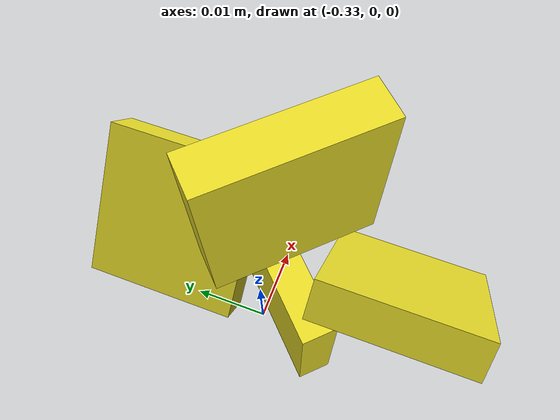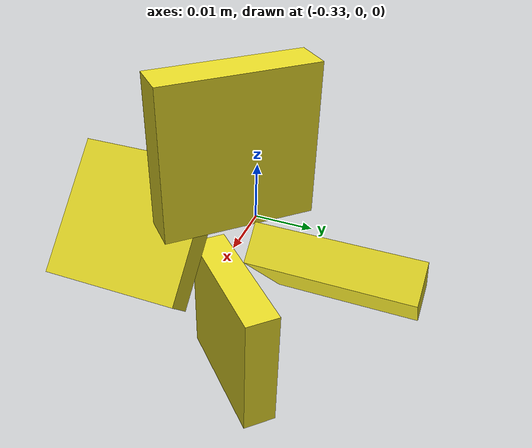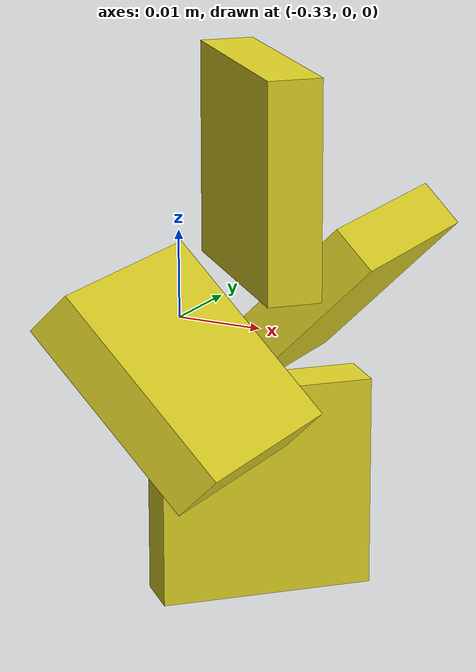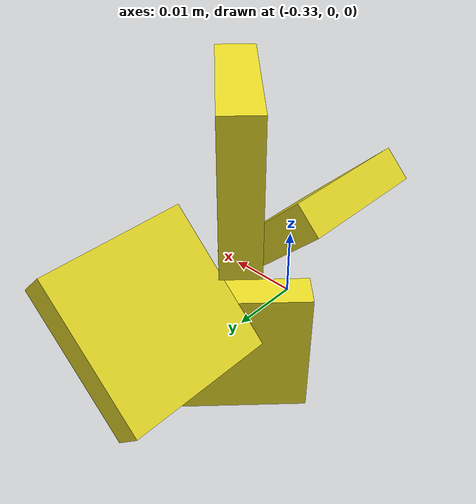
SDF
<?xml version="1.0" ?>
<sdf version="1.5">
  <model name="propeller_center_UNEXMIN">
    <pose>-0.32 0 0 0 0 0</pose>
    <link name="propeller">
      <inertial>
        <mass>0.998</mass>
        <pose>0 0 0 0 0 0</pose>
        <inertia> <!-- interias are tricky to compute -->
          <!-- http://answers.gazebosim.org/question/4372/the-inertia-matrix-explained/ -->
          <ixx>0.000415</ixx>       <!-- for a box: ixx = 0.083 * mass * (y*y + z*z) -->
          <ixy>0.0</ixy>         <!-- for a box: ixy = 0 -->
          <ixz>0.0</ixz>         <!-- for a box: ixz = 0 -->
          <iyy>0.000415</iyy>       <!-- for a box: iyy = 0.083 * mass * (x*x + z*z) -->
          <iyz>0.0</iyz>         <!-- for a box: iyz = 0 -->
          <izz>0.000415</izz>       <!-- for a box: izz = 0.083 * mass * (x*x + y*y) -->
        </inertia>
      </inertial>
      <collision name="collision">
          <geometry>
              <box>
                <size>0.05 0.05 0.05</size>
              </box>
        </geometry>

      </collision>

<visual name="blade1_visual">
		<pose>0 -0.018 0 0 0.7853981633974483 0</pose>
        	<geometry>
              <box>
                <size>0.024 0.024 0.006</size>
              </box>
        </geometry>
	  <material>
            <script>
              <uri>file://media/materials/scripts/gazebo.material</uri>
              <name>Gazebo/Yellow</name>
            </script>
          </material>
      </visual>
	<collision name="blade1_collision">
          <pose>0 -0.018 0 0 0.7853981633974483 0</pose>
            <geometry>
              <box>
                <size>0.024 0.024 0.006</size>
              </box>
            </geometry>
        </collision>
<visual name="blade2_visual">
		<pose>0 0.018 0 0 -0.7853981633974483 0</pose>
        	<geometry>
              <box>
                <size>0.024 0.024 0.006</size>
              </box>
        </geometry>
	  <material>
            <script>
              <uri>file://media/materials/scripts/gazebo.material</uri>
              <name>Gazebo/Yellow</name>
            </script>
          </material>
      </visual>
<collision name="blade2_collision">
          <pose>0 0.018 0 0 -0.7853981633974483 0</pose>
            <geometry>
              <box>
                <size>0.024 0.024 0.006</size>
              </box>
            </geometry>
        </collision>
<visual name="blade3_visual">
		<pose>0 0 -0.018 1.5707963267948966 0 0.7853981633974483</pose>
        	<geometry>
              <box>
                <size>0.024 0.024 0.006</size>
              </box>
        </geometry>
	  <material>
            <script>
              <uri>file://media/materials/scripts/gazebo.material</uri>
              <name>Gazebo/Yellow</name>
            </script>
          </material>
      </visual>
<collision name="blade3_collision">
          <pose>0 0 -0.018 1.5707963267948966 0 0.7853981633974483</pose>
            <geometry>
              <box>
                <size>0.024 0.024 0.006</size>
              </box>
            </geometry>
        </collision>
<visual name="blade4_visual">
		<pose>0 0 0.018 1.5707963267948966 0 -0.7853981633974483</pose>
        	<geometry>
              <box>
                <size>0.024 0.024 0.006</size>
              </box>
        </geometry>
	  <material>
            <script>
              <uri>file://media/materials/scripts/gazebo.material</uri>
              <name>Gazebo/Yellow</name>
            </script>
          </material>
      </visual>
<collision name="blade4_collision">
          <pose>0 0 0.018 1.5707963267948966 0 -0.7853981633974483</pose>
            <geometry>
              <box>
                <size>0.024 0.024 0.006</size>
              </box>
            </geometry>
        </collision>
  </link>

<plugin name="submarine_propeller_1" filename="libLiftDragPlugin.so">
	      	<air_density>943.70975</air_density>
		<cla>1.2535816618911175</cla>
		<cla_stall>-1.4326647564469914</cla_stall>
		<cda>0</cda>
		<cda_stall>1.4326647564469914</cda_stall>
		<alpha_stall>1.396</alpha_stall>
		<a0>0</a0>
	      	<area>0.000576</area>
	      	<upward>-0.7071067811865476 0 0.7071067811865475</upward>
	      	<forward>0.7071067811865475 0 0.7071067811865476</forward>
		<link_name>propeller</link_name>
	      	<cp>0 -0.018 0</cp>
	</plugin>

    	<plugin name="submarine_propeller_2" filename="libLiftDragPlugin.so">
      		<air_density>943.70975</air_density>
		<cla>1.2535816618911175</cla>
		<cla_stall>-1.4326647564469914</cla_stall>
		<cda>0</cda>
		<cda_stall>1.4326647564469914</cda_stall>
		<alpha_stall>1.396</alpha_stall>
		<a0>0</a0>
      		<area>0.000576</area>
      		<upward>0.7071067811865475 0 0.7071067811865476</upward>
      		<forward>0.7071067811865476 0 -0.7071067811865475</forward>
      		<link_name>propeller</link_name>
      		<cp>0 0.018 0</cp>
    	</plugin>

    	<plugin name="submarine_propeller_3" filename="libLiftDragPlugin.so">
      		<air_density>943.70975</air_density>
		<cla>1.2535816618911175</cla>
		<cla_stall>-1.4326647564469914</cla_stall>
		<cda>0</cda>
		<cda_stall>1.4326647564469914</cda_stall>
		<alpha_stall>1.396</alpha_stall>
		<a0>0</a0>
      		<area>0.000576</area>
      		<upward>-0.7071067811865475 -0.7071067811865475 0</upward>
      		<forward>0.7071067811865475 -0.7071067811865476 0</forward>
      		<link_name>propeller</link_name>
      		<cp>0 0 -0.018</cp>
    	</plugin>

    	<plugin name="submarine_propeller_4" filename="libLiftDragPlugin.so">
      		<air_density>943.70975</air_density>
		<cla>1.2535816618911175</cla>
		<cla_stall>-1.4326647564469914</cla_stall>
		<cda>0</cda>
		<cda_stall>1.4326647564469914</cda_stall>
		<alpha_stall>1.396</alpha_stall>
		<a0>0</a0>
      		<area>0.000576</area>
      		<upward>-0.7071067811865476 0.7071067811865475 0</upward>
      		<forward>0.7071067811865475 0.7071067811865475 0</forward>
      		<link_name>propeller</link_name>
      		<cp>0 0 0.018</cp>
    	</plugin>

  </model>
</sdf>
